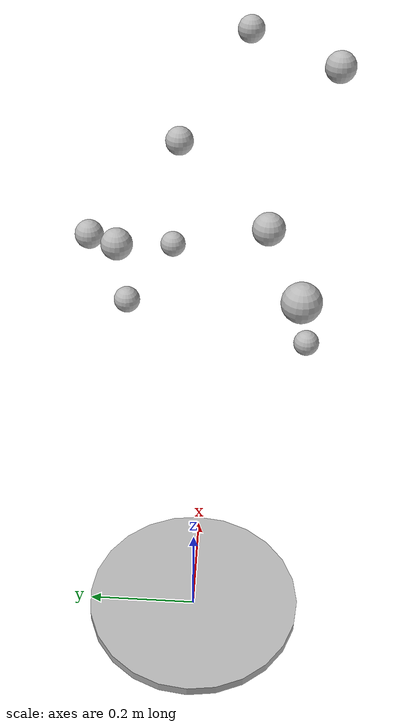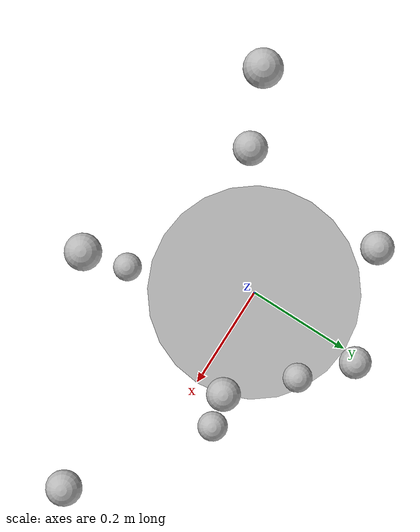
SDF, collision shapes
<?xml version="1.0"?>
<sdf version="1.6">
    <model name="tomato_plant">
	<static>false</static>
      <link name="tomato_plant_link">

        <inertial>
          <pose>0 0 0 0 0 0</pose>
          <mass>20</mass>
          <inertia>
            <ixx>0.2006</ixx>
            <ixy>0</ixy>
            <ixz>0</ixz>
            <iyy>0.2006</iyy>
            <iyz>0</iyz>
            <izz>0.4</izz>
          </inertia>
        </inertial>

        <visual name="visual">
          <pose>0 0 0 0 0 0</pose>
          <geometry>
            <mesh><uri>model://tomato_plant/meshes/tomato_plant.obj</uri></mesh>
          </geometry>
        </visual>
        <collision name="collision">
          <pose>0 0 0.01 0 0 0</pose>
       <geometry>
          <cylinder>
            <radius>0.2</radius>
            <length>0.02</length>
          </cylinder>
        </geometry>
        </collision>
      </link>

<!-- tomato link -->
      <link name="t_link_0">
        <pose>0.176111 0.046061 0.713729 0 0 0</pose>
        <inertial>
          <mass>0.001</mass>
          <inertia>
            <ixx>3.6e-03</ixx>
            <ixy>0</ixy>
            <ixz>0</ixz>
            <iyy>3.6e-03</iyy>
            <iyz>0</iyz>
            <izz>3.6e-03</izz>
          </inertia>
        </inertial>

      <surface>
        <friction>
          <ode>
            <mu>100000</mu>
            <mu2>100000</mu2>
          </ode>
        </friction>
      </surface>
        <collision name="collision">
          <geometry>
            <sphere><radius>0.02</radius></sphere>
          </geometry>
        </collision>
        <visual name="visual">
          <geometry>
            <mesh><uri>model://green_tomato/meshes/green_tomato.obj</uri></mesh>
          </geometry>
        </visual>
      </link>
      <joint name="t_joint_0" type="fixed">
        <parent>tomato_plant_link</parent>
        <child>t_link_0</child>
        <axis>
          <xyz>0 0 1</xyz>
          <use_parent_model_frame>true</use_parent_model_frame>
        </axis>
        <sensor name="force_torque" type="force_torque">
          <always_on>true</always_on>
          <update_rate>100</update_rate>
          <plugin name="breakable_0" filename="libBreakableJointPlugin.so">
            <breaking_force_N>10</breaking_force_N>
          </plugin>
        </sensor>
      </joint>

      <link name="t_link_1">
        <pose>0.063172 0.108629 0.685474 0 0 0</pose>
        <inertial>
          <mass>0.001</mass>
          <inertia>
            <ixx>3.6e-03</ixx>
            <ixy>0</ixy>
            <ixz>0</ixz>
            <iyy>3.6e-03</iyy>
            <iyz>0</iyz>
            <izz>3.6e-03</izz>
          </inertia>
        </inertial>

      <surface>
        <friction>
          <ode>
            <mu>100000</mu>
            <mu2>100000</mu2>
          </ode>
        </friction>
      </surface>

        <collision name="collision">
          <geometry>
            <sphere><radius>0.02</radius></sphere>
          </geometry>
        </collision>
        <visual name="visual">
          <geometry>
            <mesh><uri>model://green_tomato/meshes/green_tomato.obj</uri></mesh>
          </geometry>
        </visual>
      </link>
      <joint name="t_joint_1" type="fixed">
        <parent>tomato_plant_link</parent>
        <child>t_link_1</child>
        <axis>
          <xyz>0 0 1</xyz>
          <use_parent_model_frame>true</use_parent_model_frame>
        </axis>
        <sensor name="force_torque" type="force_torque">
          <always_on>true</always_on>
          <update_rate>100</update_rate>
          <plugin name="breakable_1" filename="libBreakableJointPlugin.so">
            <breaking_force_N>10</breaking_force_N>
          </plugin>
        </sensor>
      </joint>

      <link name="t_link_2">
        <pose>0.062027 -0.170581 0.614534 0 0 0</pose>
        <inertial>
          <mass>0.001</mass>
          <inertia>
            <ixx>3.6e-03</ixx>
            <ixy>0</ixy>
            <ixz>0</ixz>
            <iyy>3.6e-03</iyy>
            <iyz>0</iyz>
            <izz>3.6e-03</izz>
          </inertia>
        </inertial>

      <surface>
        <friction>
          <ode>
            <mu>100000</mu>
            <mu2>100000</mu2>
          </ode>
        </friction>
      </surface>

        <collision name="collision">
          <geometry>
            <sphere><radius>0.02</radius></sphere>
          </geometry>
        </collision>
        <visual name="visual">
          <geometry>
            <mesh><uri>model://green_tomato/meshes/green_tomato.obj</uri></mesh>
          </geometry>
        </visual>
      </link>
      <joint name="t_joint_2" type="fixed">
        <parent>tomato_plant_link</parent>
        <child>t_link_2</child>
        <axis>
          <xyz>0 0 1</xyz>
          <use_parent_model_frame>true</use_parent_model_frame>
        </axis>
        <sensor name="force_torque" type="force_torque">
          <always_on>true</always_on>
          <update_rate>100</update_rate>
          <plugin name="breakable_2" filename="libBreakableJointPlugin.so">
            <breaking_force_N>10</breaking_force_N>
          </plugin>
        </sensor>
      </joint>

      <link name="t_link_3">
        <pose>0.114746 0.0304 0.926457 0 0 0</pose>
        <inertial>
          <mass>0.001</mass>
          <inertia>
            <ixx>3.6e-03</ixx>
            <ixy>0</ixy>
            <ixz>0</ixz>
            <iyy>3.6e-03</iyy>
            <iyz>0</iyz>
            <izz>3.6e-03</izz>
          </inertia>
        </inertial>

      <surface>
        <friction>
          <ode>
            <mu>100000</mu>
            <mu2>100000</mu2>
          </ode>
        </friction>
      </surface>

        <collision name="collision">
          <geometry>
            <sphere><radius>0.02</radius></sphere>
          </geometry>
        </collision>
        <visual name="visual">
          <geometry>
            <mesh><uri>model://yellow_tomato/meshes/yellow_tomato.obj</uri></mesh>
          </geometry>
        </visual>
      </link>
      <joint name="t_joint_3" type="fixed">
        <parent>tomato_plant_link</parent>
        <child>t_link_3</child>
        <axis>
          <xyz>0 0 1</xyz>
          <use_parent_model_frame>true</use_parent_model_frame>
        </axis>
        <sensor name="force_torque" type="force_torque">
          <always_on>true</always_on>
          <update_rate>100</update_rate>
          <plugin name="breakable_3" filename="libBreakableJointPlugin.so">
            <breaking_force_N>10</breaking_force_N>
          </plugin>
        </sensor>
      </joint>

      <link name="t_link_4">
        <pose>0.003426 0.147925 0.840454 0 0 0</pose>
        <inertial>
          <mass>0.001</mass>
          <inertia>
            <ixx>3.6e-03</ixx>
            <ixy>0</ixy>
            <ixz>0</ixz>
            <iyy>3.6e-03</iyy>
            <iyz>0</iyz>
            <izz>3.6e-03</izz>
          </inertia>
        </inertial>

      <surface>
        <friction>
          <ode>
            <mu>100000</mu>
            <mu2>100000</mu2>
          </ode>
        </friction>
      </surface>

        <collision name="collision">
          <geometry>
            <sphere><radius>0.02</radius></sphere>
          </geometry>
        </collision>
        <visual name="visual">
          <geometry>
            <mesh><uri>model://yellow_tomato/meshes/yellow_tomato.obj</uri></mesh>
          </geometry>
        </visual>
      </link>
      <joint name="t_joint_4" type="fixed">
        <parent>tomato_plant_link</parent>
        <child>t_link_4</child>
        <axis>
          <xyz>0 0 1</xyz>
          <use_parent_model_frame>true</use_parent_model_frame>
        </axis>
        <sensor name="force_torque" type="force_torque">
          <always_on>true</always_on>
          <update_rate>100</update_rate>
          <plugin name="breakable_4" filename="libBreakableJointPlugin.so">
            <breaking_force_N>10</breaking_force_N>
          </plugin>
        </sensor>
      </joint>

      <link name="t_link_5">
        <pose>-0.12391 0.091553 0.91111 0 0 0</pose>
        <inertial>
          <mass>0.001</mass>
          <inertia>
            <ixx>3.6e-03</ixx>
            <ixy>0</ixy>
            <ixz>0</ixz>
            <iyy>3.6e-03</iyy>
            <iyz>0</iyz>
            <izz>3.6e-03</izz>
          </inertia>
        </inertial>

      <surface>
        <friction>
          <ode>
            <mu>100000</mu>
            <mu2>100000</mu2>
          </ode>
        </friction>
      </surface>
        <collision name="collision">
          <geometry>
            <sphere><radius>0.02</radius></sphere>
          </geometry>
        </collision>
        <visual name="visual">
          <geometry>
            <mesh><uri>model://yellow_tomato/meshes/yellow_tomato.obj</uri></mesh>
          </geometry>
        </visual>
      </link>
      <joint name="t_joint_5" type="fixed">
        <parent>tomato_plant_link</parent>
        <child>t_link_5</child>
        <axis>
          <xyz>0 0 1</xyz>
          <use_parent_model_frame>true</use_parent_model_frame>
        </axis>
        <sensor name="force_torque" type="force_torque">
          <always_on>true</always_on>
          <update_rate>100</update_rate>
          <plugin name="breakable_5" filename="libBreakableJointPlugin.so">
            <breaking_force_N>10</breaking_force_N>
          </plugin>
        </sensor>
      </joint>

      <link name="t_link_6">
        <pose>-0.23014 -0.132697 0.911579 0 0 0</pose>
        <inertial>
          <mass>0.001</mass>
          <inertia>
            <ixx>3.6e-03</ixx>
            <ixy>0</ixy>
            <ixz>0</ixz>
            <iyy>3.6e-03</iyy>
            <iyz>0</iyz>
            <izz>3.6e-03</izz>
          </inertia>
        </inertial>

      <surface>
        <friction>
          <ode>
            <mu>100000</mu>
            <mu2>100000</mu2>
          </ode>
        </friction>
      </surface>
        <collision name="collision">
          <geometry>
            <sphere><radius>0.024</radius></sphere>
          </geometry>
        </collision>
        <visual name="visual">
          <geometry>
            <mesh><uri>model://red_tomato/meshes/red_tomato.obj</uri></mesh>
          </geometry>
        </visual>
      </link>
      <joint name="t_joint_6" type="fixed">
        <parent>tomato_plant_link</parent>
        <child>t_link_6</child>
        <axis>
          <xyz>0 0 1</xyz>
          <use_parent_model_frame>true</use_parent_model_frame>
        </axis>
        <sensor name="force_torque" type="force_torque">
          <always_on>true</always_on>
          <update_rate>100</update_rate>
          <plugin name="breakable_6" filename="libBreakableJointPlugin.so">
            <breaking_force_N>10</breaking_force_N>
          </plugin>
        </sensor>
      </joint>

      <link name="t_link_7">
        <pose>-0.139776 -0.09326 0.950185 0 0 0</pose>
        <inertial>
          <mass>0.001</mass>
          <inertia>
            <ixx>3.6e-03</ixx>
            <ixy>0</ixy>
            <ixz>0</ixz>
            <iyy>3.6e-03</iyy>
            <iyz>0</iyz>
            <izz>3.6e-03</izz>
          </inertia>
        </inertial>

      <surface>
        <friction>
          <ode>
            <mu>100000</mu>
            <mu2>100000</mu2>
          </ode>
        </friction>
      </surface>
        <collision name="collision">
          <geometry>
            <sphere><radius>0.02</radius></sphere>
          </geometry>
        </collision>
        <visual name="visual">
          <geometry>
            <mesh><uri>model://red_tomato/meshes/red_tomato.obj</uri></mesh>
          </geometry>
        </visual>
      </link>
      <joint name="t_joint_7" type="fixed">
        <parent>tomato_plant_link</parent>
        <child>t_link_7</child>
        <axis>
          <xyz>0 0 1</xyz>
          <use_parent_model_frame>true</use_parent_model_frame>
        </axis>
        <sensor name="force_torque" type="force_torque">
          <always_on>true</always_on>
          <update_rate>100</update_rate>
          <plugin name="breakable_7" filename="libBreakableJointPlugin.so">
            <breaking_force_N>10</breaking_force_N>
          </plugin>
        </sensor>
      </joint>

      <link name="t_link_8">
        <pose>0.284181 -0.063758 1.01928 0 0 0</pose>
        <inertial>
          <mass>0.001</mass>
          <inertia>
            <ixx>3.6e-03</ixx>
            <ixy>0</ixy>
            <ixz>0</ixz>
            <iyy>3.6e-03</iyy>
            <iyz>0</iyz>
            <izz>3.6e-03</izz>
          </inertia>
        </inertial>

      <surface>
        <friction>
          <ode>
            <mu>100000</mu>
            <mu2>100000</mu2>
          </ode>
        </friction>
      </surface>

        <collision name="collision">
          <geometry>
            <sphere><radius>0.02</radius></sphere>
          </geometry>
        </collision>
        <visual name="visual">
          <geometry>
            <mesh><uri>model://red_tomato/meshes/red_tomato.obj</uri></mesh>
          </geometry>
        </visual>
      </link>
      <joint name="t_joint_8" type="fixed">
        <parent>tomato_plant_link</parent>
        <child>t_link_8</child>
        <axis>
          <xyz>0 0 1</xyz>
          <use_parent_model_frame>true</use_parent_model_frame>
        </axis>
        <sensor name="force_torque" type="force_torque">
          <always_on>true</always_on>
          <update_rate>100</update_rate>
          <plugin name="breakable_8" filename="libBreakableJointPlugin.so">
            <breaking_force_N>10</breaking_force_N>
          </plugin>
        </sensor>
      </joint>

      <link name="t_link_9">
        <pose>0.055319 -0.176349 1.06525 0 0 0</pose>
        <inertial>
          <mass>0.001</mass>
          <inertia>
            <ixx>3.6e-03</ixx>
            <ixy>0</ixy>
            <ixz>0</ixz>
            <iyy>3.6e-03</iyy>
            <iyz>0</iyz>
            <izz>3.6e-03</izz>
          </inertia>
        </inertial>

      <surface>
        <friction>
          <ode>
            <mu>100000</mu>
            <mu2>100000</mu2>
          </ode>
        </friction>
      </surface>
        <collision name="collision">
          <geometry>
            <sphere><radius>0.02</radius></sphere>
          </geometry>
        </collision>
        <visual name="visual">
          <geometry>
            <mesh><uri>model://red_tomato/meshes/red_tomato.obj</uri></mesh>
          </geometry>
        </visual>
      </link>
      <joint name="t_joint_9" type="fixed">
        <parent>tomato_plant_link</parent>
        <child>t_link_9</child>
        <axis>
          <xyz>0 0 1</xyz>
          <use_parent_model_frame>true</use_parent_model_frame>
        </axis>
        <sensor name="force_torque" type="force_torque">
          <always_on>true</always_on>
          <update_rate>100</update_rate>
          <plugin name="breakable_9" filename="libBreakableJointPlugin.so">
            <breaking_force_N>10</breaking_force_N>
          </plugin>
        </sensor>
      </joint>
    </model>
</sdf>
